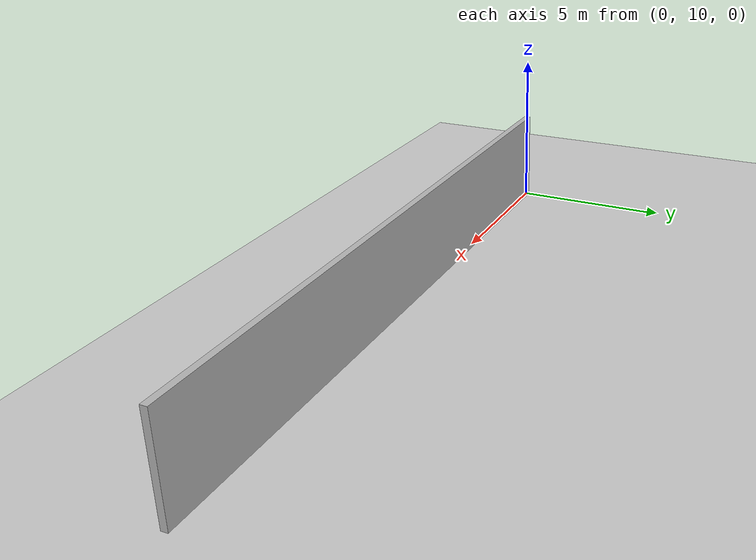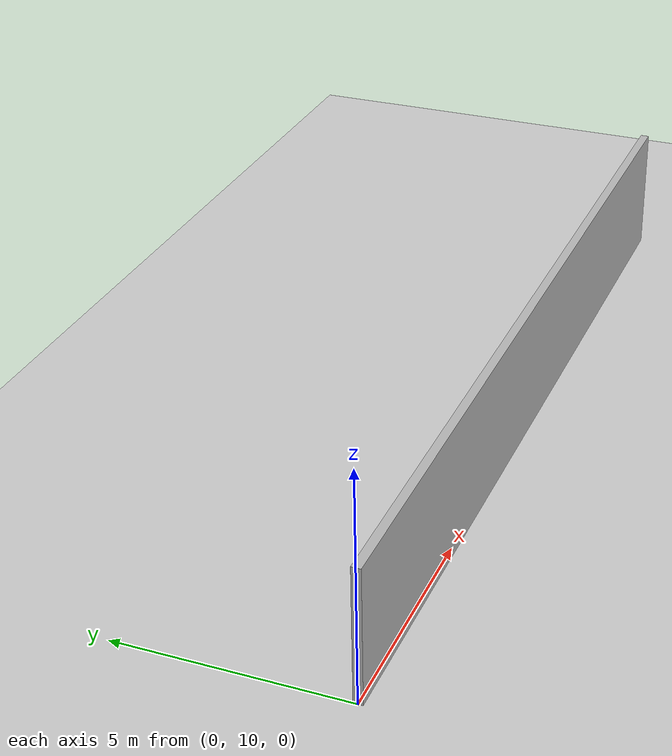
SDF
<?xml version="1.0"?>
<sdf version="1.6">
  <world name="office_world">

    <!-- Global physics -->
    <physics type="ode">
      <gravity>0 0 -9.8</gravity>
      <ode>
        <solver>
          <type>quick</type>
          <iters>50</iters>
        </solver>
      </ode>
    </physics>

    <!-- Global light -->
    <light type="directional" name="sun">
      <cast_shadows>true</cast_shadows>
      <pose>0 0 10 0 0 0</pose>
      <diffuse>0.8 0.8 0.8 1</diffuse>
      <specular>0.9 0.9 0.9 1</specular>
      <direction>0.0 0.1 -0.9</direction>
    </light>

    <!-- Ground plane -->
    <model name="ground_plane">
      <static>true</static>
      <link name="link">
        <collision name="collision">
          <geometry>
            <plane>
              <normal>0 0 1</normal>
              <size>100 100</size>
            </plane>
          </geometry>
        </collision>
        <visual name="visual">
          <geometry>
            <plane>
              <normal>0 0 1</normal>
              <size>100 100</size>
            </plane>
          </geometry>
          <material>
            <ambient>0.8 0.8 0.8 1</ambient>
          </material>
        </visual>
      </link>
    </model>

    <!-- Wall: north corridor -->
    <model name="wall_north">
      <static>true</static>
      <link name="wall">
        <collision>
          <geometry>
            <box>
              <size>20 0.2 3</size>
            </box>
          </geometry>
        </collision>
        <visual>
          <pose>0 0 1.5 0 0 0</pose>
          <geometry>
            <box>
              <size>20 0.2 3</size>
            </box>
          </geometry>
          <material>
            <color>
              <r>0.7</r>
              <g>0.7</g>
              <b>0.7</b>
            </color>
          </material>
        </visual>
      </link>
      <pose>10 10 0 0 0 0</pose>
    </model>

  </world>
</sdf>
